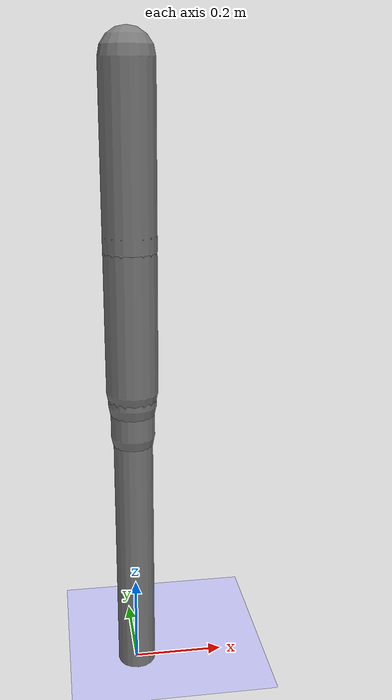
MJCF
<?xml version='1.0' encoding='UTF-8'?>
<mujoco model="robot_model">
  <worldbody>
    <light name="light" pos="0 -3 10" dir="0 0.5 -1" diffuse=".8 .8 .8" specular="0.1 0.1 0.1"/>
    <geom name="floor" type="plane" size="10.0 10.0 0.1" pos="0 0 0" rgba="0.8 0.8 1 1" contype="2" conaffinity="1"/>
    <body name="limb0" pos="0 0 0">
      <geom type="capsule" fromto="0 0 0 0 0 0.6" size="0.042200376721920854" density="1200.0" contype="1" conaffinity="2"/>
      <site type="sphere" size="0.01" name="limb0_site0" pos="0 0 0.5332966851792164"/>
      <site type="sphere" size="0.01" name="limb0_site1" pos="0 0 0.5650236933179318"/>
      <site type="sphere" size="0.01" name="limb0_site2" pos="0 0 0.18269724962577216"/>
      <freejoint name="limb0_root"/>
      <body name="limb1" pos="0 0 0.5332966851792164">
        <geom type="capsule" fromto="0 0 0 0 0 0.2108483557747831" size="0.03176305440673138" density="688.7771406626807" contype="1" conaffinity="2"/>
        <site type="sphere" size="0.01" name="limb1_site0" pos="0 0 0.1315488757351795"/>
        <site type="sphere" size="0.01" name="limb1_site1" pos="0 0 0.20255461164896735"/>
        <body name="limb2" pos="0 0 0.1315488757351795">
          <geom type="capsule" fromto="0 0 0 0 0 0.3275892204410617" size="0.05495976002937755" density="729.9579150506644" contype="1" conaffinity="2"/>
          <site type="sphere" size="0.01" name="limb2_site0" pos="0 0 0.08508694488195426"/>
          <body name="limb3" pos="0 0 0.08508694488195426">
            <geom type="capsule" fromto="0 0 0 0 0 0.2718382711396347" size="0.052967933430587415" density="959.6445780864858" contype="1" conaffinity="2"/>
            <joint name="joint_limb2_limb3_0" type="hinge" axis="0 1 0" range="-59.56851237173767 59.56851237173767" damping="5.0"/>
          </body>
          <joint name="joint_limb1_limb2_0" type="hinge" axis="0 1 0" range="-78.8368751691934 78.8368751691934" damping="5.0"/>
        </body>
        <body name="limb4" pos="0 0 0.20255461164896735">
          <geom type="capsule" fromto="0 0 0 0 0 0.4886525017141072" size="0.02730849030649112" density="1118.1587480940386" contype="1" conaffinity="2"/>
          <site type="sphere" size="0.01" name="limb4_site0" pos="0 0 0.2248171134136916"/>
          <body name="limb5" pos="0 0 0.2248171134136916">
            <geom type="capsule" fromto="0 0 0 0 0 0.362006093483435" size="0.05522805299056807" density="1175.446624849081" contype="1" conaffinity="2"/>
            <joint name="joint_limb4_limb5_0" type="hinge" axis="0 1 0" range="-105.79506732382342 105.79506732382342" damping="5.0"/>
          </body>
          <joint name="joint_limb1_limb4_0" type="hinge" axis="0 1 0" range="-72.20520517227789 72.20520517227789" damping="5.0"/>
        </body>
        <joint name="joint_limb0_limb1_0" type="hinge" axis="0 1 0" range="-98.3708742457562 98.3708742457562" damping="5.0"/>
      </body>
      <body name="limb6" pos="0 0 0.5650236933179318">
        <geom type="capsule" fromto="0 0 0 0 0 0.13267252967633406" size="0.046987777438763034" density="1012.0241807653487" contype="1" conaffinity="2"/>
        <site type="sphere" size="0.01" name="limb6_site0" pos="0 0 0.07006794526746939"/>
        <body name="limb7" pos="0 0 0.07006794526746939">
          <geom type="capsule" fromto="0 0 0 0 0 0.16986396870629186" size="0.051375428870848665" density="410.9469482212125" contype="1" conaffinity="2"/>
          <joint name="joint_limb6_limb7_0" type="hinge" axis="0 1 0" range="-41.79162224515133 41.79162224515133" damping="5.0"/>
        </body>
        <joint name="joint_limb0_limb6_0" type="hinge" axis="0 1 0" range="-40.27166760033062 40.27166760033062" damping="5.0"/>
      </body>
      <body name="limb8" pos="0 0 0.18269724962577216">
        <geom type="capsule" fromto="0 0 0 0 0 0.48797730404797973" size="0.03398202768573289" density="724.9858584904982" contype="1" conaffinity="2"/>
        <joint name="joint_limb0_limb8_0" type="hinge" axis="1 0 0" range="-69.42125494699022 69.42125494699022" damping="5.0"/>
      </body>
    </body>
  </worldbody>
  <actuator>
    <position name="position_actuator_joint_limb0_limb1_0" joint="joint_limb0_limb1_0" gear="1.2084304557007752" inheritrange="1" kp="100.0"/>
    <position name="position_actuator_joint_limb1_limb2_0" joint="joint_limb1_limb2_0" gear="1.320444813612617" inheritrange="1" kp="100.0"/>
    <position name="position_actuator_joint_limb2_limb3_0" joint="joint_limb2_limb3_0" gear="1.7547975629340502" inheritrange="1" kp="100.0"/>
    <position name="position_actuator_joint_limb1_limb4_0" joint="joint_limb1_limb4_0" gear="1.061075736514772" inheritrange="1" kp="100.0"/>
    <position name="position_actuator_joint_limb4_limb5_0" joint="joint_limb4_limb5_0" gear="1.0060890082801364" inheritrange="1" kp="100.0"/>
    <position name="position_actuator_joint_limb0_limb6_0" joint="joint_limb0_limb6_0" gear="0.5" inheritrange="1" kp="100.0"/>
    <position name="position_actuator_joint_limb6_limb7_0" joint="joint_limb6_limb7_0" gear="1.9227033142358656" inheritrange="1" kp="100.0"/>
    <position name="position_actuator_joint_limb0_limb8_0" joint="joint_limb0_limb8_0" gear="1.4583609325484326" inheritrange="1" kp="100.0"/>
  </actuator>
</mujoco>
